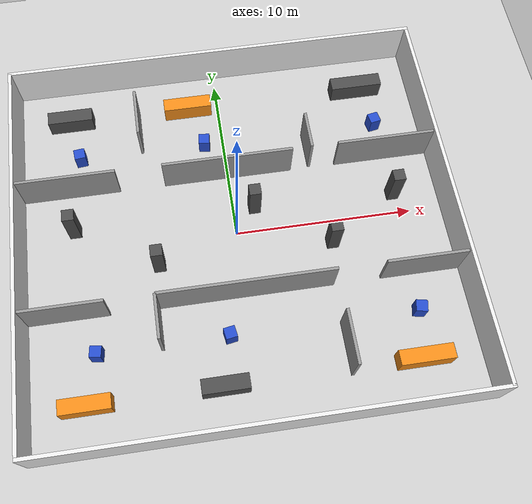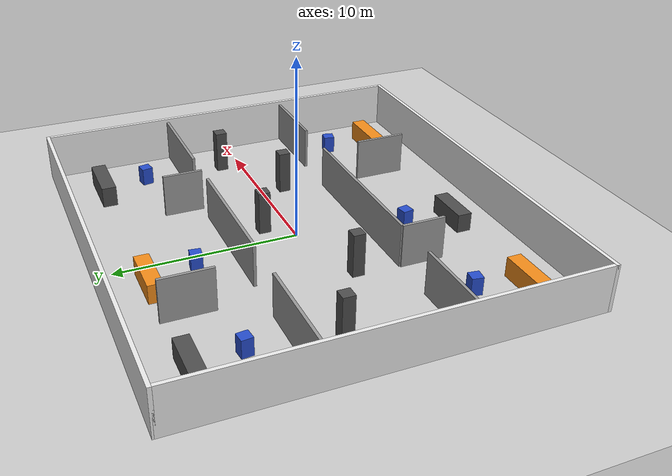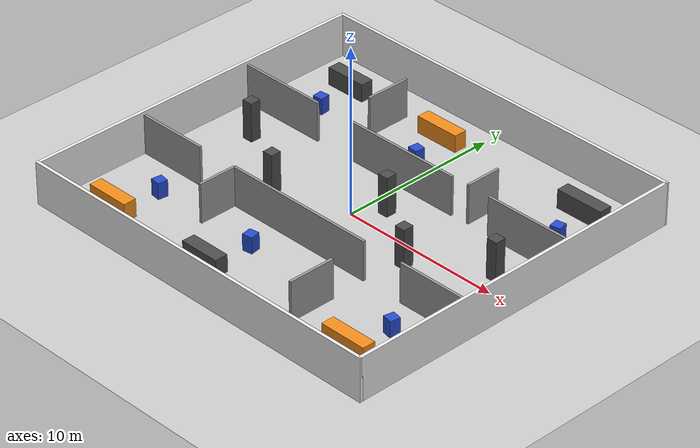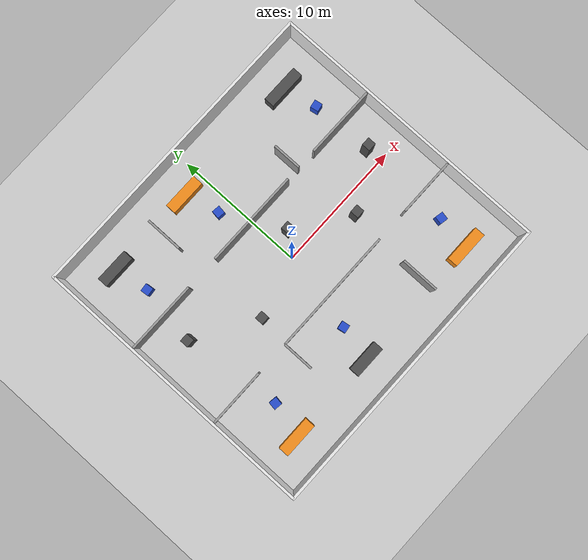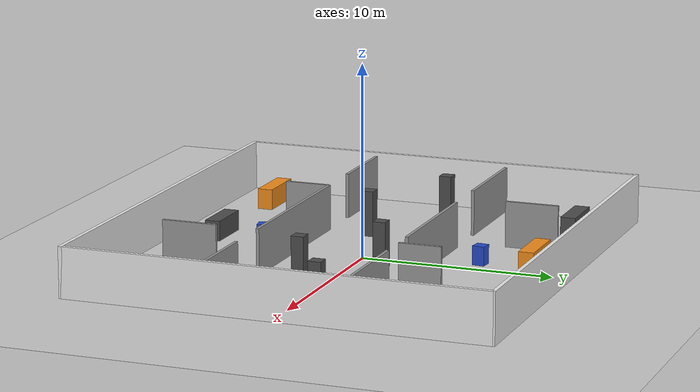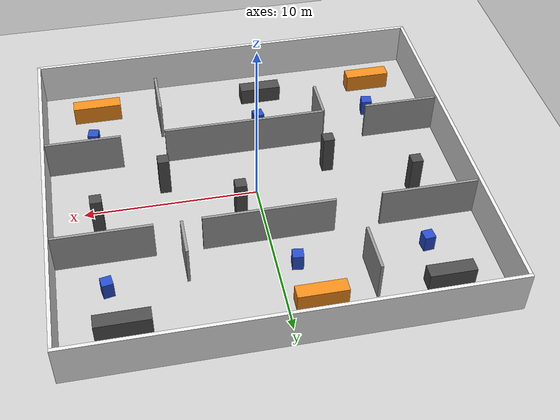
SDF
<sdf version="1.6">
 <world name="g1_factory">
  <gravity>0 0 -9.81</gravity>
  <physics name="default_physics" type="ode">
   <max_step_size>0.002</max_step_size>
   <real_time_update_rate>500</real_time_update_rate>
  </physics>
  <include><uri>model://ground_plane</uri></include>
  <include><uri>model://sun</uri></include>
  <include><uri>model://g1_factory_environment</uri><name>g1_factory_environment</name></include>
 </world>
</sdf>

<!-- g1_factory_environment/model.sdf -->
<sdf version="1.6">
  <model name="g1_factory_environment">
    <static>true</static>

    <link name="factory_structure">

      <!-- Outer enclosure: x=[-12, 12], y=[-11, 11]. -->
      <collision name="south_outer_wall_collision">
        <pose>0 -10.9 1.3 0 0 0</pose>
        <geometry><box><size>24.0 0.20 2.60</size></box></geometry>
      </collision>
      <visual name="south_outer_wall_visual">
        <pose>0 -10.9 1.3 0 0 0</pose>
        <geometry><box><size>24.0 0.20 2.60</size></box></geometry>
        <material><script><uri>file://media/materials/scripts/gazebo.material</uri><name>Gazebo/White</name></script></material>
      </visual>

      <collision name="north_outer_wall_collision">
        <pose>0 10.9 1.3 0 0 0</pose>
        <geometry><box><size>24.0 0.20 2.60</size></box></geometry>
      </collision>
      <visual name="north_outer_wall_visual">
        <pose>0 10.9 1.3 0 0 0</pose>
        <geometry><box><size>24.0 0.20 2.60</size></box></geometry>
        <material><script><uri>file://media/materials/scripts/gazebo.material</uri><name>Gazebo/White</name></script></material>
      </visual>

      <collision name="west_outer_wall_collision">
        <pose>-11.9 0 1.3 0 0 0</pose>
        <geometry><box><size>0.20 21.8 2.60</size></box></geometry>
      </collision>
      <visual name="west_outer_wall_visual">
        <pose>-11.9 0 1.3 0 0 0</pose>
        <geometry><box><size>0.20 21.8 2.60</size></box></geometry>
        <material><script><uri>file://media/materials/scripts/gazebo.material</uri><name>Gazebo/White</name></script></material>
      </visual>

      <collision name="east_outer_wall_collision">
        <pose>11.9 0 1.3 0 0 0</pose>
        <geometry><box><size>0.20 21.8 2.60</size></box></geometry>
      </collision>
      <visual name="east_outer_wall_visual">
        <pose>11.9 0 1.3 0 0 0</pose>
        <geometry><box><size>0.20 21.8 2.60</size></box></geometry>
        <material><script><uri>file://media/materials/scripts/gazebo.material</uri><name>Gazebo/White</name></script></material>
      </visual>

      <!--
        North and south partitions.  Moving them from y=+/-2.7 m to
        y=+/-3.7 m expands the main aisle from 5.4 m to 7.4 m.
        Each partition has two 2.6 m openings.
      -->
      <collision name="north_partition_west_collision">
        <pose>-9.05 3.7 1.2 0 0 0</pose>
        <geometry><box><size>5.5 0.16 2.4</size></box></geometry>
      </collision>
      <visual name="north_partition_west_visual">
        <pose>-9.05 3.7 1.2 0 0 0</pose>
        <geometry><box><size>5.5 0.16 2.4</size></box></geometry>
        <material><script><uri>file://media/materials/scripts/gazebo.material</uri><name>Gazebo/Grey</name></script></material>
      </visual>

      <collision name="north_partition_center_collision">
        <pose>0 3.7 1.2 0 0 0</pose>
        <geometry><box><size>7.4 0.16 2.4</size></box></geometry>
      </collision>
      <visual name="north_partition_center_visual">
        <pose>0 3.7 1.2 0 0 0</pose>
        <geometry><box><size>7.4 0.16 2.4</size></box></geometry>
        <material><script><uri>file://media/materials/scripts/gazebo.material</uri><name>Gazebo/Grey</name></script></material>
      </visual>

      <collision name="north_partition_east_collision">
        <pose>9.05 3.7 1.2 0 0 0</pose>
        <geometry><box><size>5.5 0.16 2.4</size></box></geometry>
      </collision>
      <visual name="north_partition_east_visual">
        <pose>9.05 3.7 1.2 0 0 0</pose>
        <geometry><box><size>5.5 0.16 2.4</size></box></geometry>
        <material><script><uri>file://media/materials/scripts/gazebo.material</uri><name>Gazebo/Grey</name></script></material>
      </visual>

      <collision name="south_partition_west_collision">
        <pose>-9.60 -3.7 1.2 0 0 0</pose>
        <geometry><box><size>4.4 0.16 2.4</size></box></geometry>
      </collision>
      <visual name="south_partition_west_visual">
        <pose>-9.60 -3.7 1.2 0 0 0</pose>
        <geometry><box><size>4.4 0.16 2.4</size></box></geometry>
        <material><script><uri>file://media/materials/scripts/gazebo.material</uri><name>Gazebo/Grey</name></script></material>
      </visual>

      <collision name="south_partition_center_collision">
        <pose>0 -3.7 1.2 0 0 0</pose>
        <geometry><box><size>9.6 0.16 2.4</size></box></geometry>
      </collision>
      <visual name="south_partition_center_visual">
        <pose>0 -3.7 1.2 0 0 0</pose>
        <geometry><box><size>9.6 0.16 2.4</size></box></geometry>
        <material><script><uri>file://media/materials/scripts/gazebo.material</uri><name>Gazebo/Grey</name></script></material>
      </visual>

      <collision name="south_partition_east_collision">
        <pose>9.60 -3.7 1.2 0 0 0</pose>
        <geometry><box><size>4.4 0.16 2.4</size></box></geometry>
      </collision>
      <visual name="south_partition_east_visual">
        <pose>9.60 -3.7 1.2 0 0 0</pose>
        <geometry><box><size>4.4 0.16 2.4</size></box></geometry>
        <material><script><uri>file://media/materials/scripts/gazebo.material</uri><name>Gazebo/Grey</name></script></material>
      </visual>

      <!-- Short asymmetric divider walls; all passages remain >= 2.2 m. -->
      <collision name="northwest_divider_collision">
        <pose>-4.8 7.4 1.2 0 0 0</pose>
        <geometry><box><size>0.16 2.8 2.4</size></box></geometry>
      </collision>
      <visual name="northwest_divider_visual">
        <pose>-4.8 7.4 1.2 0 0 0</pose>
        <geometry><box><size>0.16 2.8 2.4</size></box></geometry>
        <material><script><uri>file://media/materials/scripts/gazebo.material</uri><name>Gazebo/Grey</name></script></material>
      </visual>

      <collision name="northeast_divider_collision">
        <pose>4.8 4.8 1.2 0 0 0</pose>
        <geometry><box><size>0.16 2.2 2.4</size></box></geometry>
      </collision>
      <visual name="northeast_divider_visual">
        <pose>4.8 4.8 1.2 0 0 0</pose>
        <geometry><box><size>0.16 2.2 2.4</size></box></geometry>
        <material><script><uri>file://media/materials/scripts/gazebo.material</uri><name>Gazebo/Grey</name></script></material>
      </visual>

      <collision name="southwest_divider_collision">
        <pose>-4.8 -4.9 1.2 0 0 0</pose>
        <geometry><box><size>0.16 2.4 2.4</size></box></geometry>
      </collision>
      <visual name="southwest_divider_visual">
        <pose>-4.8 -4.9 1.2 0 0 0</pose>
        <geometry><box><size>0.16 2.4 2.4</size></box></geometry>
        <material><script><uri>file://media/materials/scripts/gazebo.material</uri><name>Gazebo/Grey</name></script></material>
      </visual>

      <collision name="southeast_divider_collision">
        <pose>4.8 -7.35 1.2 0 0 0</pose>
        <geometry><box><size>0.16 2.9 2.4</size></box></geometry>
      </collision>
      <visual name="southeast_divider_visual">
        <pose>4.8 -7.35 1.2 0 0 0</pose>
        <geometry><box><size>0.16 2.9 2.4</size></box></geometry>
        <material><script><uri>file://media/materials/scripts/gazebo.material</uri><name>Gazebo/Grey</name></script></material>
      </visual>

      <!--
        High worktables (1.0-1.15 m).  In the y direction the nominal clear
        spacing is about 1.8 m: outer wall -> table -> chair -> partition.
      -->
      <collision name="table_northwest_collision">
        <pose>-8.8 8.5 0.55 0 0 0</pose>
        <geometry><box><size>2.6 0.8 1.10</size></box></geometry>
      </collision>
      <visual name="table_northwest_visual">
        <pose>-8.8 8.5 0.55 0 0 0</pose>
        <geometry><box><size>2.6 0.8 1.10</size></box></geometry>
        <material><script><uri>file://media/materials/scripts/gazebo.material</uri><name>Gazebo/DarkGrey</name></script></material>
      </visual>

      <collision name="table_northcenter_collision">
        <pose>-1.8 8.5 0.525 0 0 0</pose>
        <geometry><box><size>2.8 0.8 1.05</size></box></geometry>
      </collision>
      <visual name="table_northcenter_visual">
        <pose>-1.8 8.5 0.525 0 0 0</pose>
        <geometry><box><size>2.8 0.8 1.05</size></box></geometry>
        <material><script><uri>file://media/materials/scripts/gazebo.material</uri><name>Gazebo/Orange</name></script></material>
      </visual>

      <collision name="table_northeast_collision">
        <pose>8.5 8.5 0.575 0 0 0</pose>
        <geometry><box><size>3.0 0.8 1.15</size></box></geometry>
      </collision>
      <visual name="table_northeast_visual">
        <pose>8.5 8.5 0.575 0 0 0</pose>
        <geometry><box><size>3.0 0.8 1.15</size></box></geometry>
        <material><script><uri>file://media/materials/scripts/gazebo.material</uri><name>Gazebo/DarkGrey</name></script></material>
      </visual>

      <collision name="table_southwest_collision">
        <pose>-8.9 -8.5 0.55 0 0 0</pose>
        <geometry><box><size>2.7 0.8 1.10</size></box></geometry>
      </collision>
      <visual name="table_southwest_visual">
        <pose>-8.9 -8.5 0.55 0 0 0</pose>
        <geometry><box><size>2.7 0.8 1.10</size></box></geometry>
        <material><script><uri>file://media/materials/scripts/gazebo.material</uri><name>Gazebo/Orange</name></script></material>
      </visual>

      <collision name="table_southcenter_collision">
        <pose>-1.8 -8.5 0.525 0 0 0</pose>
        <geometry><box><size>2.5 0.8 1.05</size></box></geometry>
      </collision>
      <visual name="table_southcenter_visual">
        <pose>-1.8 -8.5 0.525 0 0 0</pose>
        <geometry><box><size>2.5 0.8 1.05</size></box></geometry>
        <material><script><uri>file://media/materials/scripts/gazebo.material</uri><name>Gazebo/DarkGrey</name></script></material>
      </visual>

      <collision name="table_southeast_collision">
        <pose>8.6 -8.5 0.575 0 0 0</pose>
        <geometry><box><size>2.9 0.8 1.15</size></box></geometry>
      </collision>
      <visual name="table_southeast_visual">
        <pose>8.6 -8.5 0.575 0 0 0</pose>
        <geometry><box><size>2.9 0.8 1.15</size></box></geometry>
        <material><script><uri>file://media/materials/scripts/gazebo.material</uri><name>Gazebo/Orange</name></script></material>
      </visual>

      <!-- Chair-like obstacles, 1.0 m high so the navigation scan sees them. -->
      <collision name="chair_northwest_collision">
        <pose>-8.4 5.9 0.50 0 0 0.10</pose>
        <geometry><box><size>0.62 0.62 1.0</size></box></geometry>
      </collision>
      <visual name="chair_northwest_visual">
        <pose>-8.4 5.9 0.50 0 0 0.10</pose>
        <geometry><box><size>0.62 0.62 1.0</size></box></geometry>
        <material><script><uri>file://media/materials/scripts/gazebo.material</uri><name>Gazebo/Blue</name></script></material>
      </visual>

      <collision name="chair_northcenter_collision">
        <pose>-1.1 5.90 0.50 0 0 -0.12</pose>
        <geometry><box><size>0.62 0.62 1.0</size></box></geometry>
      </collision>
      <visual name="chair_northcenter_visual">
        <pose>-1.1 5.90 0.50 0 0 -0.12</pose>
        <geometry><box><size>0.62 0.62 1.0</size></box></geometry>
        <material><script><uri>file://media/materials/scripts/gazebo.material</uri><name>Gazebo/Blue</name></script></material>
      </visual>

      <collision name="chair_northeast_collision">
        <pose>9.1 5.9 0.50 0 0 0.18</pose>
        <geometry><box><size>0.62 0.62 1.0</size></box></geometry>
      </collision>
      <visual name="chair_northeast_visual">
        <pose>9.1 5.9 0.50 0 0 0.18</pose>
        <geometry><box><size>0.62 0.62 1.0</size></box></geometry>
        <material><script><uri>file://media/materials/scripts/gazebo.material</uri><name>Gazebo/Blue</name></script></material>
      </visual>

      <collision name="chair_southwest_collision">
        <pose>-8.2 -5.9 0.50 0 0 -0.14</pose>
        <geometry><box><size>0.62 0.62 1.0</size></box></geometry>
      </collision>
      <visual name="chair_southwest_visual">
        <pose>-8.2 -5.9 0.50 0 0 -0.14</pose>
        <geometry><box><size>0.62 0.62 1.0</size></box></geometry>
        <material><script><uri>file://media/materials/scripts/gazebo.material</uri><name>Gazebo/Blue</name></script></material>
      </visual>

      <collision name="chair_southcenter_collision">
        <pose>-1.2 -5.90 0.50 0 0 0.16</pose>
        <geometry><box><size>0.62 0.62 1.0</size></box></geometry>
      </collision>
      <visual name="chair_southcenter_visual">
        <pose>-1.2 -5.90 0.50 0 0 0.16</pose>
        <geometry><box><size>0.62 0.62 1.0</size></box></geometry>
        <material><script><uri>file://media/materials/scripts/gazebo.material</uri><name>Gazebo/Blue</name></script></material>
      </visual>

      <collision name="chair_southeast_collision">
        <pose>9.0 -5.9 0.50 0 0 -0.20</pose>
        <geometry><box><size>0.62 0.62 1.0</size></box></geometry>
      </collision>
      <visual name="chair_southeast_visual">
        <pose>9.0 -5.9 0.50 0 0 -0.20</pose>
        <geometry><box><size>0.62 0.62 1.0</size></box></geometry>
        <material><script><uri>file://media/materials/scripts/gazebo.material</uri><name>Gazebo/Blue</name></script></material>
      </visual>

      <collision name="aisle_column_west_collision">
        <pose>-9.0 1.35 1.2 0 0 0</pose>
        <geometry><box><size>0.65 0.65 2.4</size></box></geometry>
      </collision>
      <visual name="aisle_column_west_visual">
        <pose>-9.0 1.35 1.2 0 0 0</pose>
        <geometry><box><size>0.65 0.65 2.4</size></box></geometry>
        <material><script><uri>file://media/materials/scripts/gazebo.material</uri><name>Gazebo/DarkGrey</name></script></material>
      </visual>

      <collision name="aisle_column_midwest_collision">
        <pose>-4.5 -1.35 1.2 0 0 0</pose>
        <geometry><box><size>0.65 0.65 2.4</size></box></geometry>
      </collision>
      <visual name="aisle_column_midwest_visual">
        <pose>-4.5 -1.35 1.2 0 0 0</pose>
        <geometry><box><size>0.65 0.65 2.4</size></box></geometry>
        <material><script><uri>file://media/materials/scripts/gazebo.material</uri><name>Gazebo/DarkGrey</name></script></material>
      </visual>

      <collision name="aisle_column_center_collision">
        <pose>1.2 1.45 1.2 0 0 0</pose>
        <geometry><box><size>0.65 0.65 2.4</size></box></geometry>
      </collision>
      <visual name="aisle_column_center_visual">
        <pose>1.2 1.45 1.2 0 0 0</pose>
        <geometry><box><size>0.65 0.65 2.4</size></box></geometry>
        <material><script><uri>file://media/materials/scripts/gazebo.material</uri><name>Gazebo/DarkGrey</name></script></material>
      </visual>

      <collision name="aisle_column_mideast_collision">
        <pose>5.2 -1.30 1.2 0 0 0</pose>
        <geometry><box><size>0.65 0.65 2.4</size></box></geometry>
      </collision>
      <visual name="aisle_column_mideast_visual">
        <pose>5.2 -1.30 1.2 0 0 0</pose>
        <geometry><box><size>0.65 0.65 2.4</size></box></geometry>
        <material><script><uri>file://media/materials/scripts/gazebo.material</uri><name>Gazebo/DarkGrey</name></script></material>
      </visual>

      <collision name="aisle_column_east_collision">
        <pose>9.2 1.20 1.2 0 0 0</pose>
        <geometry><box><size>0.65 0.65 2.4</size></box></geometry>
      </collision>
      <visual name="aisle_column_east_visual">
        <pose>9.2 1.20 1.2 0 0 0</pose>
        <geometry><box><size>0.65 0.65 2.4</size></box></geometry>
        <material><script><uri>file://media/materials/scripts/gazebo.material</uri><name>Gazebo/DarkGrey</name></script></material>
      </visual>

    </link>
  </model>
</sdf>
